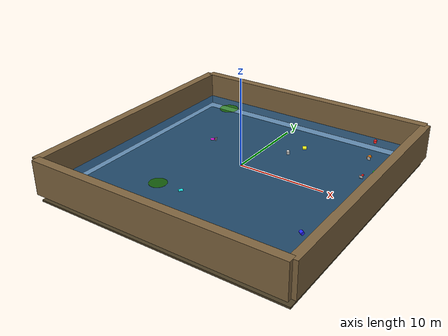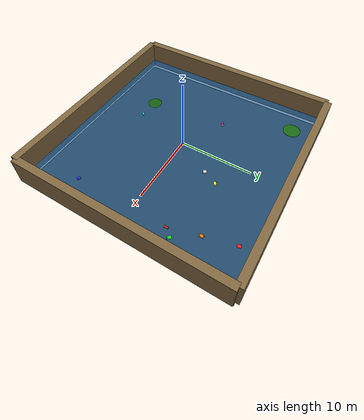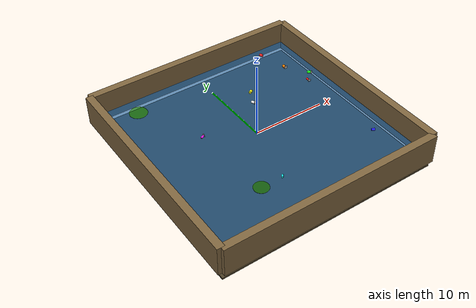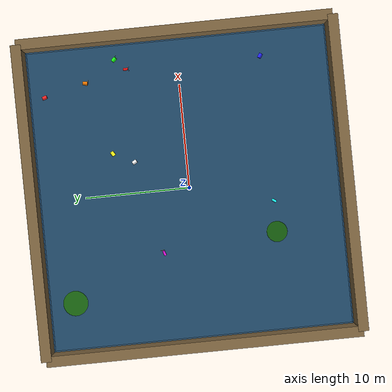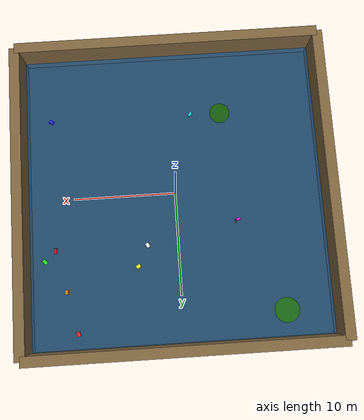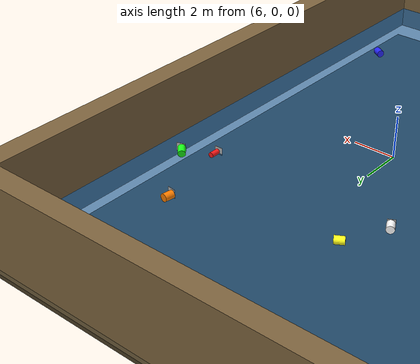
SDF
<?xml version="1.0" ?>
<sdf version="1.6">
  <world name="lake_waste_world">

    <!--  PHYSICS                                                       -->
<physics type="ode">
  <max_step_size>0.001</max_step_size>
  <real_time_factor>1.0</real_time_factor>
  <real_time_update_rate>1000</real_time_update_rate>
</physics>
    <!--  SUN  (directional, positioned high like midday sun)          -->
    <light name="sun" type="directional">
      <cast_shadows>true</cast_shadows>
      <pose>0 0 100 0 0 0</pose>
      <diffuse>1.0 0.95 0.8 1</diffuse>
      <specular>0.4 0.4 0.4 1</specular>
      <attenuation>
        <range>1000</range>
        <constant>0.9</constant>
        <linear>0.01</linear>
        <quadratic>0.001</quadratic>
      </attenuation>
      <direction>-0.3 0.2 -1.0</direction>
    </light>

    <!-- Ambient fill light for underwater/shadowed areas -->
    <light name="ambient_fill" type="point">
      <pose>0 0 20 0 0 0</pose>
      <diffuse>0.5 0.6 0.7 1</diffuse>
      <specular>0.1 0.1 0.1 1</specular>
      <attenuation>
        <range>100</range>
        <constant>0.5</constant>
        <linear>0.01</linear>
        <quadratic>0.0</quadratic>
      </attenuation>
    </light>

    <!--  SKY / SCENE                                                   -->
    <scene>
      <sky>
        <clouds>
          <speed>8</speed>
          <humidity>0.6</humidity>
          <mean_size>0.5</mean_size>
          <ambient>0.85 0.85 0.85 1</ambient>
        </clouds>
        <time>12</time>
        <sunrise>6</sunrise>
        <sunset>20</sunset>
      </sky>
      <ambient>0.4 0.5 0.6 1</ambient>
      <background>0.53 0.81 0.98 1</background>
      <shadows>true</shadows>
      <fog>
        <color>0.8 0.9 1.0 1</color>
        <type>linear</type>
        <start>40</start>
        <end>80</end>
        <density>0.02</density>
      </fog>
    </scene>

    <!--  LAKE BED  (large flat plane below water)                      -->
    <model name="lake_bed">
      <static>true</static>
      <pose>0 0 -2 0 0 0</pose>
      <link name="link">
        <collision name="collision">
          <geometry>
            <box><size>30 30 0.2</size></box>
          </geometry>
        </collision>
        <visual name="visual">
          <geometry>
            <box><size>30 30 0.2</size></box>
          </geometry>
          <material>
            <ambient>0.25 0.20 0.12 1</ambient>
            <diffuse>0.30 0.25 0.15 1</diffuse>
            <specular>0.05 0.05 0.05 1</specular>
          </material>
        </visual>
      </link>
    </model>

    <!--  WATER SURFACE  (large semi-transparent blue plane at z=0)    -->
 <model name="water_surface">
  <static>true</static>
  <pose>0 0 0 0 0 0</pose>

  <link name="link">

    <collision name="collision">
      <geometry>
        <box>
          <size>30 30 0.05</size>
        </box>
      </geometry>
    </collision>

    <visual name="visual">
      <geometry>
        <box>
          <size>30 30 0.05</size>
        </box>
      </geometry>

      <material>
        <ambient>0.05 0.25 0.45 0.75</ambient>
        <diffuse>0.08 0.35 0.60 0.75</diffuse>
        <specular>0.8 0.9 1.0 0.9</specular>
        <emissive>0.02 0.06 0.10 0</emissive>
      </material>

      <transparency>0.35</transparency>
      <cast_shadows>false</cast_shadows>
    </visual>

  </link>
</model>
    <!--  WAVE RIPPLE PATCHES  (slightly elevated transparent planes   -->
    <!--  scattered to fake wave highlights)                            -->

    <!--  LAKE SHORE WALLS  (invisible collision boundary)             -->
    <model name="shore_north">
      <static>true</static>
      <pose>0 15 1 0 0 0</pose>
      <link name="link">
        <collision name="col"><geometry><box><size>30 1 4</size></box></geometry></collision>
        <visual name="vis">
          <geometry><box><size>30 1 4</size></box></geometry>
          <material><ambient>0.4 0.35 0.2 1</ambient><diffuse>0.5 0.4 0.25 1</diffuse></material>
        </visual>
      </link>
    </model>
    <model name="shore_south">
      <static>true</static>
      <pose>0 -15 1 0 0 0</pose>
      <link name="link">
        <collision name="col"><geometry><box><size>30 1 4</size></box></geometry></collision>
        <visual name="vis">
          <geometry><box><size>30 1 4</size></box></geometry>
          <material><ambient>0.4 0.35 0.2 1</ambient><diffuse>0.5 0.4 0.25 1</diffuse></material>
        </visual>
      </link>
    </model>
    <model name="shore_east">
      <static>true</static>
      <pose>15 0 1 0 0 0</pose>
      <link name="link">
        <collision name="col"><geometry><box><size>1 30 4</size></box></geometry></collision>
        <visual name="vis">
          <geometry><box><size>1 30 4</size></box></geometry>
          <material><ambient>0.4 0.35 0.2 1</ambient><diffuse>0.5 0.4 0.25 1</diffuse></material>
        </visual>
      </link>
    </model>
    <model name="shore_west">
      <static>true</static>
      <pose>-15 0 1 0 0 0</pose>
      <link name="link">
        <collision name="col"><geometry><box><size>1 30 4</size></box></geometry></collision>
        <visual name="vis">
          <geometry><box><size>1 30 4</size></box></geometry>
          <material><ambient>0.4 0.35 0.2 1</ambient><diffuse>0.5 0.4 0.25 1</diffuse></material>
        </visual>
      </link>
    </model>

    <!--  ALGAE PATCHES  (flat green ellipses on surface)              -->

    <!-- Large cluster near top-left -->
    <model name="algae_A3">
      <static>true</static>
      <pose>-10 12 0.03 0 0 2.0</pose>
      <link name="link">
        <visual name="vis">
          <geometry><cylinder><radius>1.2</radius><length>0.06</length></cylinder></geometry>
          <material>
            <ambient>0.06 0.38 0.06 0.80</ambient>
            <diffuse>0.09 0.48 0.09 0.80</diffuse>
          </material>
          <cast_shadows>false</cast_shadows>
        </visual>
      </link>
    </model>

    <!-- Medium cluster bottom-right -->

    <!-- Small isolated algae patch centre-left -->
    <model name="algae_C1">
      <static>true</static>
      <pose>-5 -8 0.03 0 0 0.2</pose>
      <link name="link">
        <visual name="vis">
          <geometry><cylinder><radius>1.0</radius><length>0.06</length></cylinder></geometry>
          <material>
            <ambient>0.05 0.33 0.05 0.80</ambient>
            <diffuse>0.07 0.43 0.07 0.80</diffuse>
          </material>
          <cast_shadows>false</cast_shadows>
        </visual>
      </link>
    </model>

    <!--  PLASTIC BOTTLES  (bright, easy to see)                       -->

    <!-- Dense garbage zone: top-right cluster -->
    <model name="bottle_1">
      <static>true</static>
      <pose>10 13 0.35 1.57 0 0.3</pose>
      <link name="link">
        <collision name="col"><geometry><cylinder><radius>0.18</radius><length>0.45</length></cylinder></geometry></collision>
        <visual name="vis">
         <geometry>
         <cylinder>
         <radius>0.18</radius>
         <length>0.45</length>
         </cylinder>
         </geometry>

           <material>
            <ambient>0.9 0.1 0.1 1</ambient>
            <diffuse>1.0 0.15 0.15 1</diffuse>
            <specular>0.9 0.9 0.9 1</specular>
           </material>
       </visual>
      </link>
    </model>
    <model name="bottle_2">
      <static>true</static>
      <pose>12 -8 0.35 1.57 0 1.0</pose>
      <link name="link">
        <collision name="col"><geometry><cylinder><radius>0.18</radius><length>0.45</length></cylinder></geometry></collision>
        <visual name="vis">
          <geometry><cylinder><radius>0.18</radius><length>0.45</length></cylinder></geometry>
          <material>
            <ambient>0.1 0.1 0.95 1</ambient>
            <diffuse>0.15 0.15 1.0 1</diffuse>
            <specular>0.9 0.9 0.9 1</specular>
          </material>
        </visual>
      </link>
    </model>

    <model name="bottle_3">
      <static>true</static>
      <pose>4 7 0.35 1.57 0 2.1</pose>
      <link name="link">
        <collision name="col"><geometry><cylinder><radius>0.18</radius><length>0.45</length></cylinder></geometry></collision>
        <visual name="vis">
          <geometry><cylinder><radius>0.18</radius><length>0.45</length></cylinder></geometry>
          <material>
            <ambient>0.95 0.95 0.1 1</ambient>
            <diffuse>1.0 1.0 0.1 1</diffuse>
            <specular>0.8 0.8 0.6 1</specular>
          </material>
        </visual>
      </link>
    </model>

    <model name="bottle_4">
      <static>true</static>
      <pose>13 6 0.35 1.4 0.2 0.7</pose>
      <link name="link">
        <collision name="col"><geometry><cylinder><radius>0.18</radius><length>0.45</length></cylinder></geometry></collision>
        <visual name="vis">
          <geometry><cylinder><radius>0.18</radius><length>0.45</length></cylinder></geometry>
          <material>
            <ambient>0.1 0.9 0.1 1</ambient>
            <diffuse>0.1 1.0 0.1 1</diffuse>
            <specular>0.8 0.9 0.8 1</specular>
          </material>
        </visual>
      </link>
    </model>

    <model name="bottle_5">
      <static>true</static>
      <pose>11 9 0.35 1.57 0 3.0</pose>
      <link name="link">
        <collision name="col"><geometry><cylinder><radius>0.18</radius><length>0.45</length></cylinder></geometry></collision>
        <visual name="vis">
          <geometry><cylinder><radius>0.18</radius><length>0.45</length></cylinder></geometry>
          <material>
            <ambient>0.9 0.4 0.0 1</ambient>
            <diffuse>1.0 0.5 0.0 1</diffuse>
            <specular>0.9 0.7 0.4 1</specular>
          </material>
        </visual>
      </link>
    </model>

    <!-- Scattered bottles: middle zone -->
    <model name="bottle_6">
      <static>true</static>
      <pose>3 5 0.35 1.57 0 0.5</pose>
      <link name="link">
        <collision name="col"><geometry><cylinder><radius>0.18</radius><length>0.45</length></cylinder></geometry></collision>
        <visual name="vis">
          <geometry><cylinder><radius>0.18</radius><length>0.45</length></cylinder></geometry>
          <material>
            <ambient>0.95 0.95 0.95 1</ambient>
            <diffuse>1.0 1.0 1.0 1</diffuse>
            <specular>0.9 0.9 0.9 1</specular>
          </material>
        </visual>
      </link>
    </model>

    <model name="bottle_7">
      <static>true</static>
      <pose>-6 3 0.35 1.3 0.3 1.8</pose>
      <link name="link">
        <collision name="col"><geometry><cylinder><radius>0.12</radius><length>0.45</length></cylinder></geometry></collision>
        <visual name="vis">
          <geometry><cylinder><radius>0.12</radius><length>0.45</length></cylinder></geometry>
          <material>
            <ambient>0.85 0.1 0.85 1</ambient>
            <diffuse>1.0 0.1 1.0 1</diffuse>
            <specular>0.9 0.6 0.9 1</specular>
          </material>
        </visual>
      </link>
    </model>

    <model name="bottle_8">
      <static>true</static>
      <pose>12 5 0.15 1.57 0 0.0</pose>
      <link name="link">
        <collision name="col"><geometry><cylinder><radius>0.12</radius><length>0.45</length></cylinder></geometry></collision>
        <visual name="vis">
          <geometry><cylinder><radius>0.12</radius><length>0.45</length></cylinder></geometry>
          <material>
            <ambient>0.9 0.1 0.1 1</ambient>
            <diffuse>1.0 0.1 0.1 1</diffuse>
            <specular>0.9 0.9 0.9 1</specular>
          </material>
   </visual>
      </link>
    </model>

    <!-- Lone bottle bottom-left -->
    <model name="bottle_9">
      <static>true</static>
      <pose>-2 -8 0.15 1.57 0 2.5</pose>
      <link name="link">
      <collision name="col"><geometry><cylinder><radius>0.12</radius><length>0.45</length></cylinder></geometry></collision>
        <visual name="vis">
          <geometry><cylinder><radius>0.12</radius><length>0.45</length></cylinder></geometry>
          <material>
            <ambient>0.1 0.85 0.85 1</ambient>
            <diffuse>0.1 1.0 1.0 1</diffuse>
            <specular>0.8 0.9 0.9 1</specular>
          </material>
        </visual>
      </link>
    </model>

    <!--  GARBAGE PILES  (flat brown rectangular debris chunks)        -->

    <!-- Big garbage cluster near top-right with bottles -->

    <!--  AUTONOMOUS WASTE DETECTION ROBOT                             -->
    <!--  Catamaran-style: twin hulls + central body + sensor mast     -->

  <include>
    <uri>model://apriltag_36h11_00000</uri>
    <name>waste_tag_0</name>
    <pose>13.23 5.8 0.35 1.4 -1.57 0.5</pose>
  </include>

  <include>
    <uri>model://apriltag_36h11_00001</uri>
    <name>waste_tag_1</name>
    <pose>11.07 8.71 0.35 1.57 1.57 3.0</pose>
  </include>

  <include>
    <uri>model://apriltag_36h11_00002</uri>
    <name>waste_tag_2</name>
    <pose>3.10 4.8 0.35 1.57 -1.57 0.5</pose>
  </include>

  <include>
    <uri>model://apriltag_36h11_00003</uri>
    <name>waste_tag_3</name>
    <pose>-5.70 3.2 0.35 1.4 -1.27 1.8</pose>
  </include>

   <include>
    <uri>model://apriltag_36h11_00004</uri>
    <name>waste_tag_4</name>
    <pose>12.00 4.7 0.15 1.57 0 0.0</pose>
  </include>

  </world>
</sdf>

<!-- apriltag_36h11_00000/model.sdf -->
<sdf version='1.6'>
  <model name='apriltag_36h11_00000'>
    <link name='main'>
      <visual name='main_Visual'>
        <geometry>
          <box>
          <size>0.4 0.4 0.01</size>
          </box>
        </geometry>
        <material>
          <script>
            <uri>model://apriltag_36h11_00000/materials/scripts</uri>
            <uri>model://apriltag_36h11_00000/materials/textures</uri>
            <name>apriltag_36h11_00000</name>
          </script>
        </material>
      </visual>
      <collision name="collision">
        <geometry>
          <box><size>0.4 0.4 0.01</size></box>
        </geometry>
      </collision>
     </link>
    <static>1</static>
  </model>
</sdf>

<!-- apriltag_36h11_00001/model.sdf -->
<sdf version='1.6'>
  <model name='apriltag_36h11_00001'>
    <link name='main'>
      <visual name='main_Visual'>
        <geometry>
          <box>
          <size>0.4 0.4 0.01</size>
          </box>
        </geometry>
        <material>
          <script>
            <uri>model://apriltag_36h11_00001/materials/scripts</uri>
            <uri>model://apriltag_36h11_00001/materials/textures</uri>
            <name>apriltag_36h11_00001</name>
          </script>
        </material>
      </visual>
      <collision name="collision">
        <geometry>
          <box><size>0.4 0.4 0.01</size></box>
        </geometry>
      </collision>
     </link>
    <static>1</static>
  </model>
</sdf>

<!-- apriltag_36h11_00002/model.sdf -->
<sdf version='1.6'>
  <model name='apriltag_36h11_00002'>
    <link name='main'>
      <visual name='main_Visual'>
        <geometry>
          <box>
          <size>0.4 0.35 0.01</size>
          </box>
        </geometry>
        <material>
          <script>
            <uri>model://apriltag_36h11_00002/materials/scripts</uri>
            <uri>model://apriltag_36h11_00002/materials/textures</uri>
            <name>apriltag_36h11_00002</name>
          </script>
        </material>
      </visual>
      <collision name="collision">
        <geometry>
          <box><size>0.4 0.35 0.01</size></box>
        </geometry>
      </collision>
     </link>
    <static>1</static>
  </model>
</sdf>

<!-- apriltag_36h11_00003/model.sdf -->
<sdf version='1.6'>
  <model name='apriltag_36h11_00003'>
    <link name='main'>
      <visual name='main_Visual'>
        <geometry>
          <box>
          <size>0.4 0.35 0.01</size>
          </box>
        </geometry>
        <material>
          <script>
            <uri>model://apriltag_36h11_00003/materials/scripts</uri>
            <uri>model://apriltag_36h11_00003/materials/textures</uri>
            <name>apriltag_36h11_00003</name>
          </script>
        </material>
      </visual>
      <collision name="collision">
        <geometry>
          <box><size>0.4 0.35 0.01</size></box>
        </geometry>
      </collision>
     </link>
    <static>1</static>
  </model>
</sdf>

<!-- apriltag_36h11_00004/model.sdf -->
<sdf version='1.6'>
  <model name='apriltag_36h11_00004'>
    <link name='main'>
      <visual name='main_Visual'>
        <geometry>
          <box>
          <size>0.4 0.35 0.01</size>
          </box>
        </geometry>
           <material>
          <script>
            <uri>model://apriltag_36h11_00004/materials/scripts</uri>
            <uri>model://apriltag_36h11_00004/materials/textures</uri>
            <name>apriltag_36h11_00004</name>
          </script>
        </material>
      </visual>
      <collision name="collision">
        <geometry>
          <box><size>0.4 0.35 0.01</size></box>
        </geometry>
      </collision>
     </link>
    <static>1</static>
  </model>
</sdf>
